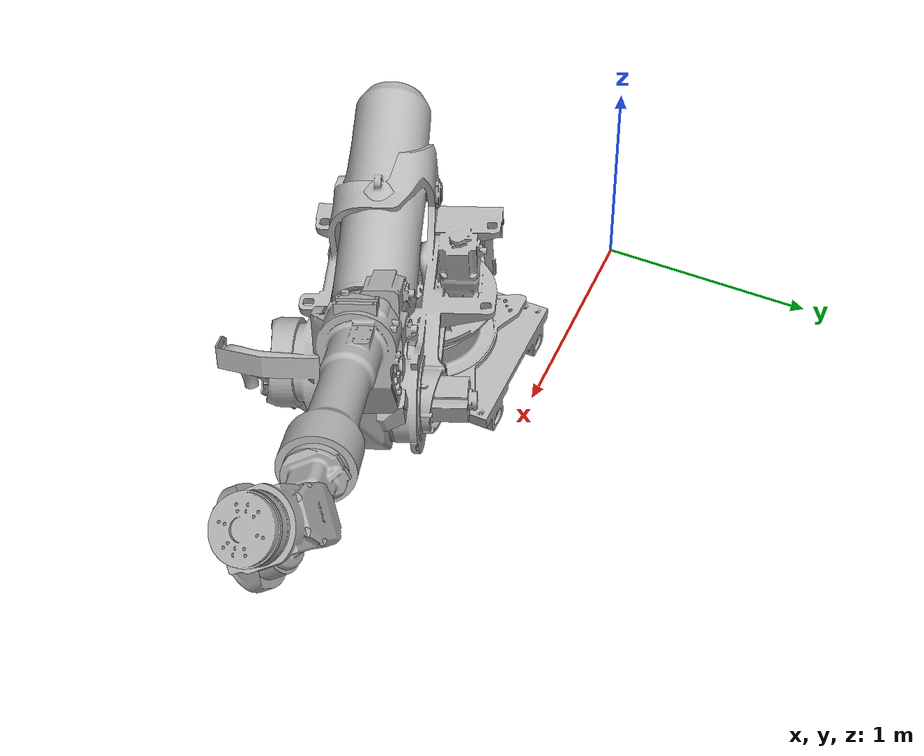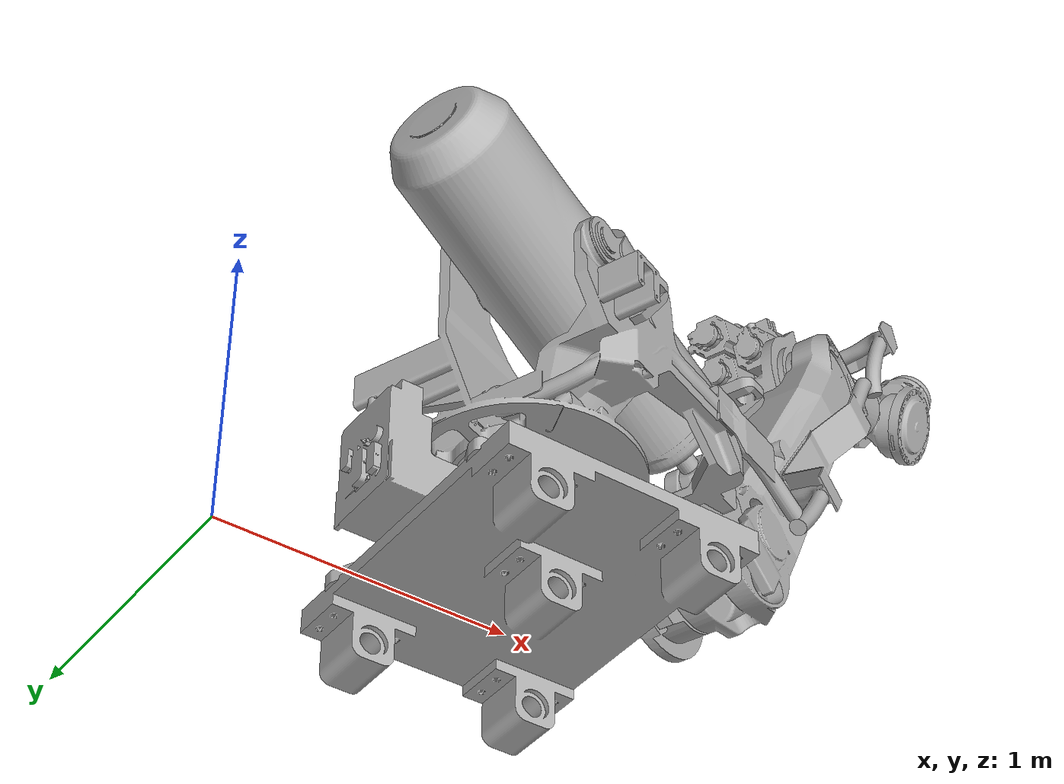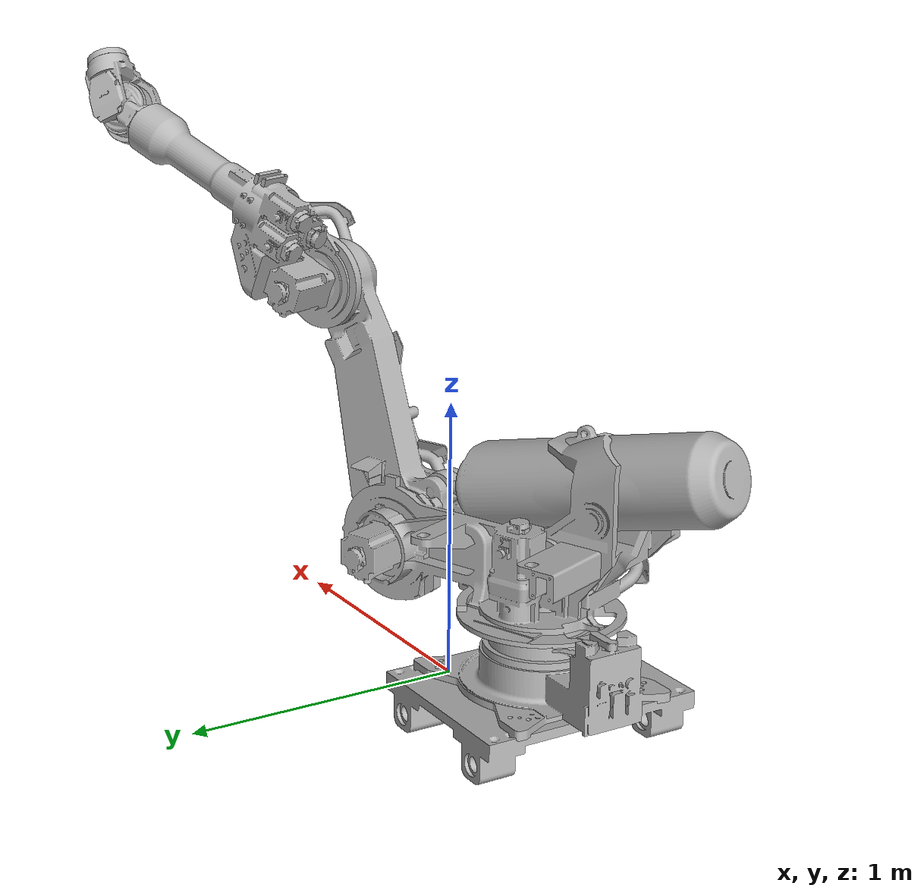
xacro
<?xml version="1.0" ?>
<robot name="Robot" xmlns:xacro="http://www.ros.org/wiki/xacro">

<xacro:include filename="$(find Robot_description)/urdf/materials.xacro" />
<xacro:include filename="$(find Robot_description)/urdf/Robot.trans" />
<xacro:include filename="$(find Robot_description)/urdf/Robot.gazebo" />
<link name="base_link">
  <inertial>
    <origin xyz="0.0 0.0 0.0" rpy="0 0 0"/>
    <mass value="0.0"/>
    <inertia ixx="0.0" iyy="0.0" izz="0.0" ixy="0.0" iyz="0.0" ixz="0.0"/>
  </inertial>
  <visual>
    <origin xyz="0 0 0" rpy="0 0 0"/>
    <geometry>
      <mesh filename="package://Robot_description/meshes/base_link.stl" scale="0.001 0.001 0.001"/>
    </geometry>
    <material name="silver"/>
  </visual>
  <collision>
    <origin xyz="0 0 0" rpy="0 0 0"/>
    <geometry>
      <mesh filename="package://Robot_description/meshes/base_link.stl" scale="0.001 0.001 0.001"/>
    </geometry>
  </collision>
</link>

<link name="ssplaca11111_1">
  <inertial>
    <origin xyz="0.16816144736085598 1.130242303244973 0.08435717350176891" rpy="0 0 0"/>
    <mass value="375.40867935896205"/>
    <inertia ixx="38.020673" iyy="20.791186" izz="56.844586" ixy="-8e-06" iyz="-0.118171" ixz="-0.0"/>
  </inertial>
  <visual>
    <origin xyz="-0.37818 1.900695 0.558373" rpy="0 0 0"/>
    <geometry>
      <mesh filename="package://Robot_description/meshes/ssplaca11111_1.stl" scale="0.001 0.001 0.001"/>
    </geometry>
    <material name="silver"/>
  </visual>
  <collision>
    <origin xyz="-0.37818 1.900695 0.558373" rpy="0 0 0"/>
    <geometry>
      <mesh filename="package://Robot_description/meshes/ssplaca11111_1.stl" scale="0.001 0.001 0.001"/>
    </geometry>
  </collision>
</link>

<link name="BASE111_1">
  <inertial>
    <origin xyz="-0.0819064610691344 -0.00043883275899025964 0.11638560527943387" rpy="0 0 0"/>
    <mass value="570.6700095274523"/>
    <inertia ixx="15.007732" iyy="29.800288" izz="35.945756" ixy="-0.008386" iyz="-0.049965" ixz="0.974627"/>
  </inertial>
  <visual>
    <origin xyz="-0.546341 0.764805 0.423668" rpy="0 0 0"/>
    <geometry>
      <mesh filename="package://Robot_description/meshes/BASE111_1.stl" scale="0.001 0.001 0.001"/>
    </geometry>
    <material name="silver"/>
  </visual>
  <collision>
    <origin xyz="-0.546341 0.764805 0.423668" rpy="0 0 0"/>
    <geometry>
      <mesh filename="package://Robot_description/meshes/BASE111_1.stl" scale="0.001 0.001 0.001"/>
    </geometry>
  </collision>
</link>

<link name="S_AXIS1111111111_1">
  <inertial>
    <origin xyz="0.24466794479935539 0.05128279784333545 0.20193877691570378" rpy="0 0 0"/>
    <mass value="704.6086442897418"/>
    <inertia ixx="65.135386" iyy="100.672217" izz="129.875461" ixy="-30.931057" iyz="8.201024" ixz="10.585126"/>
  </inertial>
  <visual>
    <origin xyz="-0.538792 0.764805 0.131668" rpy="0 0 0"/>
    <geometry>
      <mesh filename="package://Robot_description/meshes/S_AXIS1111111111_1.stl" scale="0.001 0.001 0.001"/>
    </geometry>
    <material name="silver"/>
  </visual>
  <collision>
    <origin xyz="-0.538792 0.764805 0.131668" rpy="0 0 0"/>
    <geometry>
      <mesh filename="package://Robot_description/meshes/S_AXIS1111111111_1.stl" scale="0.001 0.001 0.001"/>
    </geometry>
  </collision>
</link>

<link name="L_AXIS1111111111_1">
  <inertial>
    <origin xyz="0.2953257448252329 -0.05781067633528614 0.39152298403718966" rpy="0 0 0"/>
    <mass value="552.7941542901582"/>
    <inertia ixx="65.217806" iyy="82.204935" izz="25.704715" ixy="-3.072531" iyz="-3.911626" ixz="-30.518136"/>
  </inertial>
  <visual>
    <origin xyz="-1.256357 0.567865 -0.016332" rpy="0 0 0"/>
    <geometry>
      <mesh filename="package://Robot_description/meshes/L_AXIS1111111111_1.stl" scale="0.001 0.001 0.001"/>
    </geometry>
    <material name="silver"/>
  </visual>
  <collision>
    <origin xyz="-1.256357 0.567865 -0.016332" rpy="0 0 0"/>
    <geometry>
      <mesh filename="package://Robot_description/meshes/L_AXIS1111111111_1.stl" scale="0.001 0.001 0.001"/>
    </geometry>
  </collision>
</link>

<link name="U_AXIS1111111111_1">
  <inertial>
    <origin xyz="0.12105319321935815 0.2774925707551613 0.24827752694931782" rpy="0 0 0"/>
    <mass value="483.423381953783"/>
    <inertia ixx="35.212477" iyy="50.339318" izz="40.849864" ixy="-13.090506" iyz="-13.220022" ixz="-18.661963"/>
  </inertial>
  <visual>
    <origin xyz="-1.854654 0.536771 -1.015979" rpy="0 0 0"/>
    <geometry>
      <mesh filename="package://Robot_description/meshes/U_AXIS1111111111_1.stl" scale="0.001 0.001 0.001"/>
    </geometry>
    <material name="silver"/>
  </visual>
  <collision>
    <origin xyz="-1.854654 0.536771 -1.015979" rpy="0 0 0"/>
    <geometry>
      <mesh filename="package://Robot_description/meshes/U_AXIS1111111111_1.stl" scale="0.001 0.001 0.001"/>
    </geometry>
  </collision>
</link>

<link name="R_AXIS1111111111_1">
  <inertial>
    <origin xyz="0.1808151825540092 -0.0015520884227349686 0.03478524471465416" rpy="0 0 0"/>
    <mass value="8.899939703677402"/>
    <inertia ixx="0.051132" iyy="0.090197" izz="0.08962" ixy="0.00492" iyz="0.001768" ixz="-0.004746"/>
  </inertial>
  <visual>
    <origin xyz="-2.556688 -0.02455 -1.635389" rpy="0 0 0"/>
    <geometry>
      <mesh filename="package://Robot_description/meshes/R_AXIS1111111111_1.stl" scale="0.001 0.001 0.001"/>
    </geometry>
    <material name="silver"/>
  </visual>
  <collision>
    <origin xyz="-2.556688 -0.02455 -1.635389" rpy="0 0 0"/>
    <geometry>
      <mesh filename="package://Robot_description/meshes/R_AXIS1111111111_1.stl" scale="0.001 0.001 0.001"/>
    </geometry>
  </collision>
</link>

<link name="B_AXIS1111111111_1">
  <inertial>
    <origin xyz="-0.0007938014575432639 0.10047052116865882 0.13744793458112237" rpy="0 0 0"/>
    <mass value="45.97892583556151"/>
    <inertia ixx="0.48222" iyy="0.52207" izz="0.447959" ixy="0.04733" iyz="-0.009258" ixz="-0.080339"/>
  </inertial>
  <visual>
    <origin xyz="-2.80176 0.03456 -1.648816" rpy="0 0 0"/>
    <geometry>
      <mesh filename="package://Robot_description/meshes/B_AXIS1111111111_1.stl" scale="0.001 0.001 0.001"/>
    </geometry>
    <material name="silver"/>
  </visual>
  <collision>
    <origin xyz="-2.80176 0.03456 -1.648816" rpy="0 0 0"/>
    <geometry>
      <mesh filename="package://Robot_description/meshes/B_AXIS1111111111_1.stl" scale="0.001 0.001 0.001"/>
    </geometry>
  </collision>
</link>

<link name="T_AXIS111111111_1">
  <inertial>
    <origin xyz="0.008292396655664724 -0.0005762393489285034 0.011520103720092711" rpy="0 0 0"/>
    <mass value="5.836276011069453"/>
    <inertia ixx="0.017241" iyy="0.013058" izz="0.0211" ixy="-0.000287" iyz="-0.000404" ixz="0.005763"/>
  </inertial>
  <visual>
    <origin xyz="-2.869373 -0.0574 -1.876035" rpy="0 0 0"/>
    <geometry>
      <mesh filename="package://Robot_description/meshes/T_AXIS111111111_1.stl" scale="0.001 0.001 0.001"/>
    </geometry>
    <material name="silver"/>
  </visual>
  <collision>
    <origin xyz="-2.869373 -0.0574 -1.876035" rpy="0 0 0"/>
    <geometry>
      <mesh filename="package://Robot_description/meshes/T_AXIS111111111_1.stl" scale="0.001 0.001 0.001"/>
    </geometry>
  </collision>
</link>

<link name="BALANCER_11111111111_1">
  <inertial>
    <origin xyz="0.22642099632217927 0.10875488726730087 -0.20303725456543642" rpy="0 0 0"/>
    <mass value="1052.0941458276736"/>
    <inertia ixx="39.017297" iyy="119.796715" izz="128.357793" ixy="-37.307883" iyz="9.488315" ixz="24.255809"/>
  </inertial>
  <visual>
    <origin xyz="-0.268876 1.096595 -0.599527" rpy="0 0 0"/>
    <geometry>
      <mesh filename="package://Robot_description/meshes/BALANCER_11111111111_1.stl" scale="0.001 0.001 0.001"/>
    </geometry>
    <material name="silver"/>
  </visual>
  <collision>
    <origin xyz="-0.268876 1.096595 -0.599527" rpy="0 0 0"/>
    <geometry>
      <mesh filename="package://Robot_description/meshes/BALANCER_11111111111_1.stl" scale="0.001 0.001 0.001"/>
    </geometry>
  </collision>
</link>

<link name="BALANCER_21111111111_1">
  <inertial>
    <origin xyz="-0.19378739451528237 -1.09478338404662 0.32649982944380457" rpy="0 0 0"/>
    <mass value="34.72062884447938"/>
    <inertia ixx="1.166404" iyy="5.632623" izz="6.085232" ixy="-2.053086" iyz="0.520178" ixz="1.334368"/>
  </inertial>
  <visual>
    <origin xyz="-0.8843 -0.182913 -0.020402" rpy="0 0 0"/>
    <geometry>
      <mesh filename="package://Robot_description/meshes/BALANCER_21111111111_1.stl" scale="0.001 0.001 0.001"/>
    </geometry>
    <material name="silver"/>
  </visual>
  <collision>
    <origin xyz="-0.8843 -0.182913 -0.020402" rpy="0 0 0"/>
    <geometry>
      <mesh filename="package://Robot_description/meshes/BALANCER_21111111111_1.stl" scale="0.001 0.001 0.001"/>
    </geometry>
  </collision>
</link>

<joint name="base_link1" type="prismatic">
  <origin xyz="0.37818 -1.900695 -0.558373" rpy="0 0 0"/>
  <parent link="base_link"/>
  <child link="ssplaca11111_1"/>
  <axis xyz="0.0 -1.0 0.0"/>
  <limit upper="1.3" lower="-0.4" effort="100" velocity="100"/>
</joint>

<joint name="Rígida 23" type="fixed">
  <origin xyz="0.168161 1.13589 0.134705" rpy="0 0 0"/>
  <parent link="ssplaca11111_1"/>
  <child link="BASE111_1"/>
</joint>

<joint name="link1_link2" type="continuous">
  <origin xyz="-0.007549 0.0 0.292" rpy="0 0 0"/>
  <parent link="BASE111_1"/>
  <child link="S_AXIS1111111111_1"/>
  <axis xyz="0.0 -0.0 1.0"/>
</joint>

<joint name="link2_link3" type="revolute">
  <origin xyz="0.717565 0.19694 0.148" rpy="0 0 0"/>
  <parent link="S_AXIS1111111111_1"/>
  <child link="L_AXIS1111111111_1"/>
  <axis xyz="0.364297 -0.931283 -0.0"/>
  <limit upper="0.698132" lower="-1.308997" effort="100" velocity="100"/>
</joint>

<joint name="link3_link4" type="revolute">
  <origin xyz="0.598297 0.031094 0.999647" rpy="0 0 0"/>
  <parent link="L_AXIS1111111111_1"/>
  <child link="U_AXIS1111111111_1"/>
  <axis xyz="-0.364297 0.931283 -0.0"/>
  <limit upper="1.919862" lower="-1.396263" effort="100" velocity="100"/>
</joint>

<joint name="link4_link5" type="continuous">
  <origin xyz="0.702034 0.561321 0.61941" rpy="0 0 0"/>
  <parent link="U_AXIS1111111111_1"/>
  <child link="R_AXIS1111111111_1"/>
  <axis xyz="0.862521 0.337398 0.377121"/>
</joint>

<joint name="link5_link6" type="revolute">
  <origin xyz="0.245072 -0.05911 0.013427" rpy="0 0 0"/>
  <parent link="R_AXIS1111111111_1"/>
  <child link="B_AXIS1111111111_1"/>
  <axis xyz="-0.476887 0.791219 0.382819"/>
  <limit upper="2.181662" lower="-2.181662" effort="100" velocity="100"/>
</joint>

<joint name="link6_link7" type="continuous">
  <origin xyz="0.067613 0.09196 0.227219" rpy="0 0 0"/>
  <parent link="B_AXIS1111111111_1"/>
  <child link="T_AXIS111111111_1"/>
  <axis xyz="0.583709 -0.04055 0.81095"/>
</joint>

<joint name="Rígida 31" type="fixed">
  <origin xyz="-0.615424 -1.279508 0.579125" rpy="0 0 0"/>
  <parent link="BALANCER_21111111111_1"/>
  <child link="BALANCER_11111111111_1"/>
</joint>

<joint name="Rígida 32" type="fixed">
  <origin xyz="0.345508 0.947718 0.15207" rpy="0 0 0"/>
  <parent link="S_AXIS1111111111_1"/>
  <child link="BALANCER_21111111111_1"/>
</joint>

</robot>

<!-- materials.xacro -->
<robot name="Robot" xmlns:xacro="http://www.ros.org/wiki/xacro" >

<material name="silver">
  <color rgba="0.700 0.700 0.700 1.000"/>
</material>

<material name="blue">
  <color rgba="0.000 0.000 1.000 1.000"/>
</material>

</robot>

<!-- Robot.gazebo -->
<robot name="Robot" xmlns:xacro="http://www.ros.org/wiki/xacro" >

<xacro:property name="body_color" value="Gazebo/Silver" />

<gazebo>
  <plugin name="control" filename="libgazebo_ros_control.so"/>
</gazebo>
<gazebo reference="base_link">
  <material>${body_color}</material>
  <mu1>0.2</mu1>
  <mu2>0.2</mu2>
  <selfCollide>true</selfCollide>
  <gravity>true</gravity>
</gazebo>

<gazebo reference="placa_base_1">
  <material>${body_color}</material>
  <mu1>0.2</mu1>
  <mu2>0.2</mu2>
  <selfCollide>true</selfCollide>
</gazebo>

<gazebo reference="base_r_1">
  <material>${body_color}</material>
  <mu1>0.2</mu1>
  <mu2>0.2</mu2>
  <selfCollide>true</selfCollide>
</gazebo>

<gazebo reference="s_axis_1">
  <material>${body_color}</material>
  <mu1>0.2</mu1>
  <mu2>0.2</mu2>
  <selfCollide>true</selfCollide>
</gazebo>

<gazebo reference="l_axis_1">
  <material>${body_color}</material>
  <mu1>0.2</mu1>
  <mu2>0.2</mu2>
  <selfCollide>true</selfCollide>
</gazebo>

<gazebo reference="u_axis_1">
  <material>${body_color}</material>
  <mu1>0.2</mu1>
  <mu2>0.2</mu2>
  <selfCollide>true</selfCollide>
</gazebo>

<gazebo reference="r_axis_1">
  <material>${body_color}</material>
  <mu1>0.2</mu1>
  <mu2>0.2</mu2>
  <selfCollide>true</selfCollide>
</gazebo>

<gazebo reference="b_axis_1">
  <material>${body_color}</material>
  <mu1>0.2</mu1>
  <mu2>0.2</mu2>
  <selfCollide>true</selfCollide>
</gazebo>

<gazebo reference="t_axis_1">
  <material>${body_color}</material>
  <mu1>0.2</mu1>
  <mu2>0.2</mu2>
  <selfCollide>true</selfCollide>
</gazebo>

<gazebo reference="balancer_2_1">
  <material>${body_color}</material>
  <mu1>0.2</mu1>
  <mu2>0.2</mu2>
  <selfCollide>true</selfCollide>
</gazebo>

<gazebo reference="balancer_1_1">
  <material>${body_color}</material>
  <mu1>0.2</mu1>
  <mu2>0.2</mu2>
  <selfCollide>true</selfCollide>
</gazebo>

</robot>
